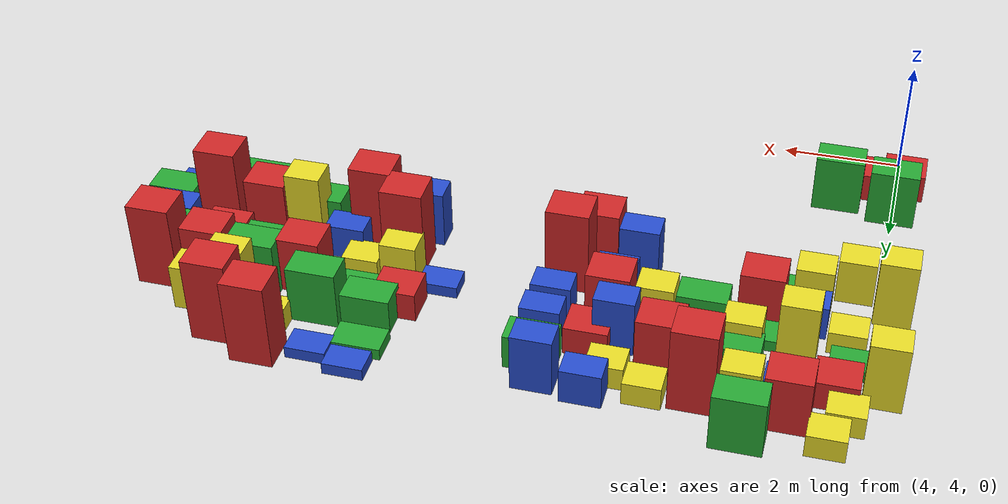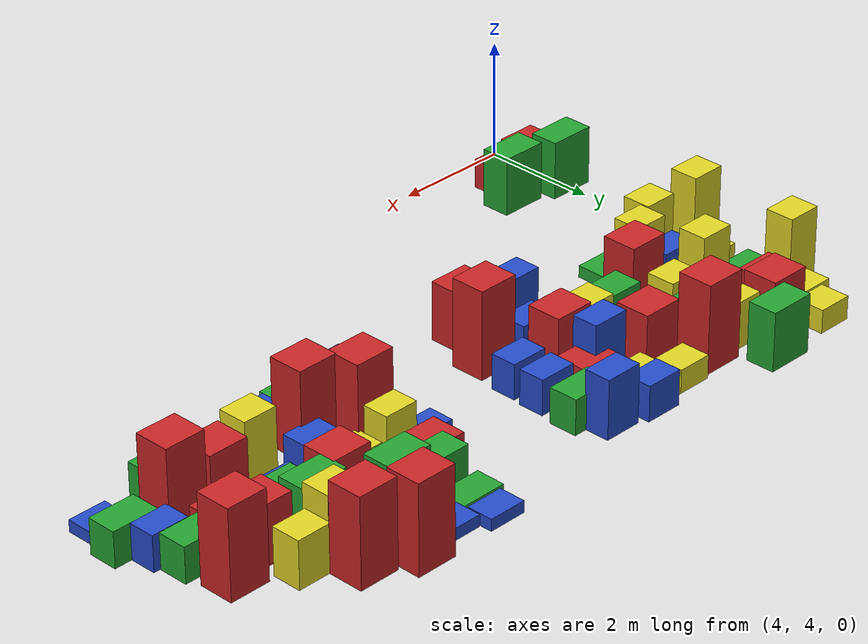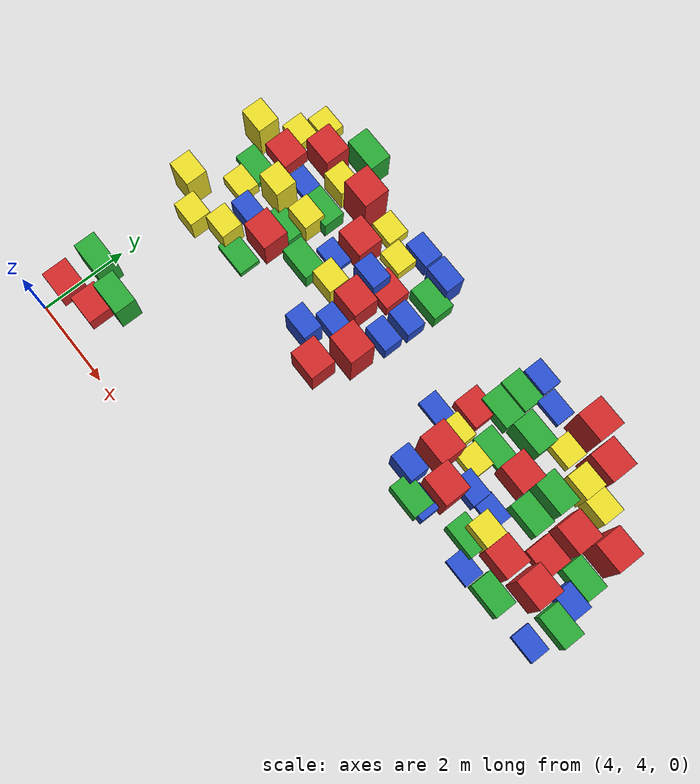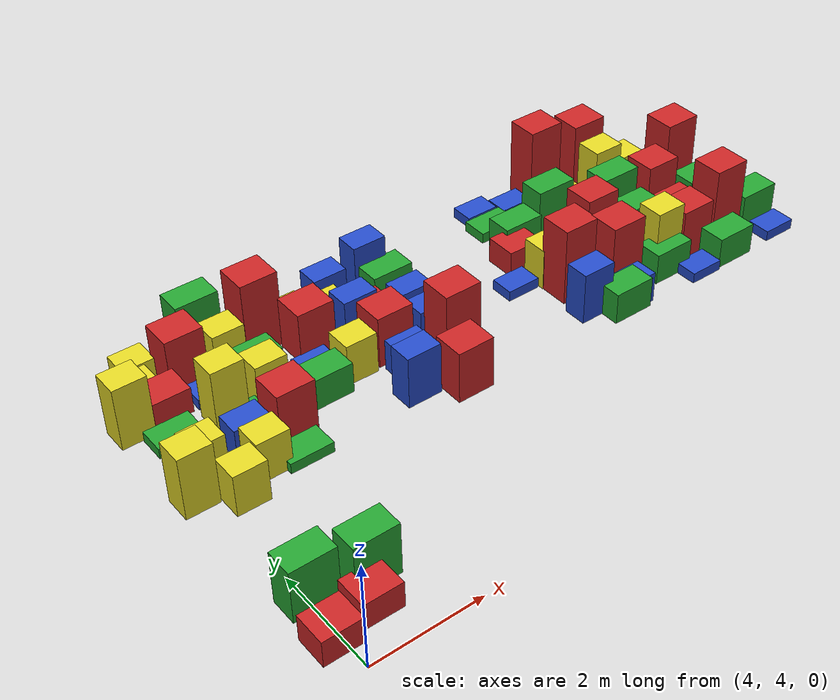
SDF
<sdf version="1.6">
 <world name="default">
  <model name="baggage_A_0.5_clone_5">
   <pose>14.5721 8.97359 0.25049 0 -0 0</pose>
   <static>1</static>
   <link name="baggage_A_0.5::link">
    <collision name="collision"><geometry><box><size>0.7 0.6 0.5</size></box></geometry></collision>
    <visual name="visual">
     <geometry><box><size>0.7 0.6 0.5</size></box></geometry>
     <material>
      <script><uri>file://media/materials/scripts/gazebo.material</uri><name>Gazebo/Red</name></script>
     </material>
    </visual>
   </link>
  </model>
  <model name="baggage_A_0.5_clone_8">
   <pose>8.23951 9.91271 0.250259 0 -0 0</pose>
   <static>1</static>
   <link name="baggage_A_0.5::link">
    <collision name="collision"><geometry><box><size>0.7 0.6 0.5</size></box></geometry></collision>
    <visual name="visual">
     <geometry><box><size>0.7 0.6 0.5</size></box></geometry>
     <material>
      <script><uri>file://media/materials/scripts/gazebo.material</uri><name>Gazebo/Red</name></script>
     </material>
    </visual>
   </link>
  </model>
  <model name="baggage_A_0.5_clone_14">
   <pose>4.67139 4.83978 0.249865 0 -0 0</pose>
   <static>1</static>
   <link name="baggage_A_0.5::link">
    <collision name="collision"><geometry><box><size>0.7 0.6 0.5</size></box></geometry></collision>
    <visual name="visual">
     <geometry><box><size>0.7 0.6 0.5</size></box></geometry>
     <material>
      <script><uri>file://media/materials/scripts/gazebo.material</uri><name>Gazebo/Red</name></script>
     </material>
    </visual>
   </link>
  </model>
  <model name="baggage_A_0.5_clone_34">
   <pose>4.42669 10.155 0.250487 0 -0 0</pose>
   <static>1</static>
   <link name="baggage_A_0.5::link">
    <collision name="collision"><geometry><box><size>0.7 0.6 0.5</size></box></geometry></collision>
    <visual name="visual">
     <geometry><box><size>0.7 0.6 0.5</size></box></geometry>
     <material>
      <script><uri>file://media/materials/scripts/gazebo.material</uri><name>Gazebo/Red</name></script>
     </material>
    </visual>
   </link>
  </model>
  <model name="baggage_A_0.5_clone_38">
   <pose>3.8838 4.6666 0.249811 0 -0 0</pose>
   <static>1</static>
   <link name="baggage_A_0.5::link">
    <collision name="collision"><geometry><box><size>0.7 0.6 0.5</size></box></geometry></collision>
    <visual name="visual">
     <geometry><box><size>0.7 0.6 0.5</size></box></geometry>
     <material>
      <script><uri>file://media/materials/scripts/gazebo.material</uri><name>Gazebo/Red</name></script>
     </material>
    </visual>
   </link>
  </model>
  <model name="baggage_A_0.5_clone_49">
   <pose>11.3391 9.77002 0.249869 0 -0 0</pose>
   <static>1</static>
   <link name="baggage_A_0.5::link">
    <collision name="collision"><geometry><box><size>0.7 0.6 0.5</size></box></geometry></collision>
    <visual name="visual">
     <geometry><box><size>0.7 0.6 0.5</size></box></geometry>
     <material>
      <script><uri>file://media/materials/scripts/gazebo.material</uri><name>Gazebo/Red</name></script>
     </material>
    </visual>
   </link>
  </model>
  <model name="baggage_A_1.0_clone_2">
   <pose>5.07663 10.79 0.500243 0 -0 0</pose>
   <static>1</static>
   <link name="baggage_A_1.0::link">
    <collision name="collision"><geometry><box><size>0.7 0.6 1</size></box></geometry></collision>
    <visual name="visual">
     <geometry><box><size>0.7 0.6 1</size></box></geometry>
     <material>
      <script><uri>file://media/materials/scripts/gazebo.material</uri><name>Gazebo/Red</name></script>
     </material>
    </visual>
   </link>
  </model>
  <model name="baggage_A_1.0_clone_14">
   <pose>14.0575 8.2505 0.500439 0 -0 0</pose>
   <static>1</static>
   <link name="baggage_A_1.0::link">
    <collision name="collision"><geometry><box><size>0.7 0.6 1</size></box></geometry></collision>
    <visual name="visual">
     <geometry><box><size>0.7 0.6 1</size></box></geometry>
     <material>
      <script><uri>file://media/materials/scripts/gazebo.material</uri><name>Gazebo/Red</name></script>
     </material>
    </visual>
   </link>
  </model>
  <model name="baggage_A_1.0_clone_15">
   <pose>8.55788 7.69446 0.500157 0 -0 0</pose>
   <static>1</static>
   <link name="baggage_A_1.0::link">
    <collision name="collision"><geometry><box><size>0.7 0.6 1</size></box></geometry></collision>
    <visual name="visual">
     <geometry><box><size>0.7 0.6 1</size></box></geometry>
     <material>
      <script><uri>file://media/materials/scripts/gazebo.material</uri><name>Gazebo/Red</name></script>
     </material>
    </visual>
   </link>
  </model>
  <model name="baggage_A_1.0_clone_19">
   <pose>14.5654 9.67124 0.500149 0 -0 0</pose>
   <static>1</static>
   <link name="baggage_A_1.0::link">
    <collision name="collision"><geometry><box><size>0.7 0.6 1</size></box></geometry></collision>
    <visual name="visual">
     <geometry><box><size>0.7 0.6 1</size></box></geometry>
     <material>
      <script><uri>file://media/materials/scripts/gazebo.material</uri><name>Gazebo/Red</name></script>
     </material>
    </visual>
   </link>
  </model>
  <model name="baggage_A_1.0_clone_27">
   <pose>7.10683 10.0643 0.499769 0 -0 0</pose>
   <static>1</static>
   <link name="baggage_A_1.0::link">
    <collision name="collision"><geometry><box><size>0.7 0.6 1</size></box></geometry></collision>
    <visual name="visual">
     <geometry><box><size>0.7 0.6 1</size></box></geometry>
     <material>
      <script><uri>file://media/materials/scripts/gazebo.material</uri><name>Gazebo/Red</name></script>
     </material>
    </visual>
   </link>
  </model>
  <model name="baggage_A_1.0_clone_28">
   <pose>5.77036 8.60826 0.499919 0 -0 0</pose>
   <static>1</static>
   <link name="baggage_A_1.0::link">
    <collision name="collision"><geometry><box><size>0.7 0.6 1</size></box></geometry></collision>
    <visual name="visual">
     <geometry><box><size>0.7 0.6 1</size></box></geometry>
     <material>
      <script><uri>file://media/materials/scripts/gazebo.material</uri><name>Gazebo/Red</name></script>
     </material>
    </visual>
   </link>
  </model>
  <model name="baggage_A_1.0_clone_40">
   <pose>12.9679 9.56183 0.500186 0 -0 0</pose>
   <static>1</static>
   <link name="baggage_A_1.0::link">
    <collision name="collision"><geometry><box><size>0.7 0.6 1</size></box></geometry></collision>
    <visual name="visual">
     <geometry><box><size>0.7 0.6 1</size></box></geometry>
     <material>
      <script><uri>file://media/materials/scripts/gazebo.material</uri><name>Gazebo/Red</name></script>
     </material>
    </visual>
   </link>
  </model>
  <model name="baggage_A_1.0_clone_44">
   <pose>8.06696 9.19307 0.499841 0 -0 0</pose>
   <static>1</static>
   <link name="baggage_A_1.0::link">
    <collision name="collision"><geometry><box><size>0.7 0.6 1</size></box></geometry></collision>
    <visual name="visual">
     <geometry><box><size>0.7 0.6 1</size></box></geometry>
     <material>
      <script><uri>file://media/materials/scripts/gazebo.material</uri><name>Gazebo/Red</name></script>
     </material>
    </visual>
   </link>
  </model>
  <model name="baggage_A_1.5_clone_0">
   <pose>13.1144 11.3235 0.749643 0 -0 0</pose>
   <static>1</static>
   <link name="baggage_A_1.5::link">
    <collision name="collision"><geometry><box><size>0.7 0.6 1.5</size></box></geometry></collision>
    <visual name="visual">
     <geometry><box><size>0.7 0.6 1.5</size></box></geometry>
     <material>
      <script><uri>file://media/materials/scripts/gazebo.material</uri><name>Gazebo/Red</name></script>
     </material>
    </visual>
   </link>
  </model>
  <model name="baggage_A_1.5_clone_8">
   <pose>14.8608 8.28483 0.750081 0 -0 0</pose>
   <static>1</static>
   <link name="baggage_A_1.5::link">
    <collision name="collision"><geometry><box><size>0.7 0.6 1.5</size></box></geometry></collision>
    <visual name="visual">
     <geometry><box><size>0.7 0.6 1.5</size></box></geometry>
     <material>
      <script><uri>file://media/materials/scripts/gazebo.material</uri><name>Gazebo/Red</name></script>
     </material>
    </visual>
   </link>
  </model>
  <model name="baggage_A_1.5_clone_16">
   <pose>15.2636 9.94094 0.749638 0 -0 0</pose>
   <static>1</static>
   <link name="baggage_A_1.5::link">
    <collision name="collision"><geometry><box><size>0.7 0.6 1.5</size></box></geometry></collision>
    <visual name="visual">
     <geometry><box><size>0.7 0.6 1.5</size></box></geometry>
     <material>
      <script><uri>file://media/materials/scripts/gazebo.material</uri><name>Gazebo/Red</name></script>
     </material>
    </visual>
   </link>
  </model>
  <model name="baggage_A_1.5_clone_23">
   <pose>6.47452 10.709 0.74976 0 -0 0</pose>
   <static>1</static>
   <link name="baggage_A_1.5::link">
    <collision name="collision"><geometry><box><size>0.7 0.6 1.5</size></box></geometry></collision>
    <visual name="visual">
     <geometry><box><size>0.7 0.6 1.5</size></box></geometry>
     <material>
      <script><uri>file://media/materials/scripts/gazebo.material</uri><name>Gazebo/Red</name></script>
     </material>
    </visual>
   </link>
  </model>
  <model name="baggage_A_1.5_clone_27">
   <pose>13.8756 10.9908 0.749655 0 -0 0</pose>
   <static>1</static>
   <link name="baggage_A_1.5::link">
    <collision name="collision"><geometry><box><size>0.7 0.6 1.5</size></box></geometry></collision>
    <visual name="visual">
     <geometry><box><size>0.7 0.6 1.5</size></box></geometry>
     <material>
      <script><uri>file://media/materials/scripts/gazebo.material</uri><name>Gazebo/Red</name></script>
     </material>
    </visual>
   </link>
  </model>
  <model name="baggage_A_1.5_clone_28">
   <pose>11.5627 8.59469 0.749913 0 -0 0</pose>
   <static>1</static>
   <link name="baggage_A_1.5::link">
    <collision name="collision"><geometry><box><size>0.7 0.6 1.5</size></box></geometry></collision>
    <visual name="visual">
     <geometry><box><size>0.7 0.6 1.5</size></box></geometry>
     <material>
      <script><uri>file://media/materials/scripts/gazebo.material</uri><name>Gazebo/Red</name></script>
     </material>
    </visual>
   </link>
  </model>
  <model name="baggage_A_1.5_clone_29">
   <pose>12.2384 8.14285 0.750142 0 -0 0</pose>
   <static>1</static>
   <link name="baggage_A_1.5::link">
    <collision name="collision"><geometry><box><size>0.7 0.6 1.5</size></box></geometry></collision>
    <visual name="visual">
     <geometry><box><size>0.7 0.6 1.5</size></box></geometry>
     <material>
      <script><uri>file://media/materials/scripts/gazebo.material</uri><name>Gazebo/Red</name></script>
     </material>
    </visual>
   </link>
  </model>
  <model name="baggage_A_1.5_clone_36">
   <pose>8.88645 8.43977 0.749677 0 -0 0</pose>
   <static>1</static>
   <link name="baggage_A_1.5::link">
    <collision name="collision"><geometry><box><size>0.7 0.6 1.5</size></box></geometry></collision>
    <visual name="visual">
     <geometry><box><size>0.7 0.6 1.5</size></box></geometry>
     <material>
      <script><uri>file://media/materials/scripts/gazebo.material</uri><name>Gazebo/Red</name></script>
     </material>
    </visual>
   </link>
  </model>
  <model name="baggage_B_0.2_clone_2">
   <pose>5.18338 10.0566 0.099706 0 -0 0</pose>
   <static>1</static>
   <link name="baggage_B_0.2::link">
    <collision name="collision"><geometry><box><size>0.65 0.45 0.2</size></box></geometry></collision>
    <visual name="visual">
     <geometry><box><size>0.65 0.45 0.2</size></box></geometry>
     <material>
      <script><uri>file://media/materials/scripts/gazebo.material</uri><name>Gazebo/Blue</name></script>
     </material>
    </visual>
   </link>
  </model>
  <model name="baggage_B_0.2_clone_9">
   <pose>6.88017 9.54866 0.099864 0 -0 0</pose>
   <static>1</static>
   <link name="baggage_B_0.2::link">
    <collision name="collision"><geometry><box><size>0.65 0.45 0.2</size></box></geometry></collision>
    <visual name="visual">
     <geometry><box><size>0.65 0.45 0.2</size></box></geometry>
     <material>
      <script><uri>file://media/materials/scripts/gazebo.material</uri><name>Gazebo/Blue</name></script>
     </material>
    </visual>
   </link>
  </model>
  <model name="baggage_B_0.2_clone_11">
   <pose>12.3409 11.1335 0.100217 0 -0 0</pose>
   <static>1</static>
   <link name="baggage_B_0.2::link">
    <collision name="collision"><geometry><box><size>0.65 0.45 0.2</size></box></geometry></collision>
    <visual name="visual">
     <geometry><box><size>0.65 0.45 0.2</size></box></geometry>
     <material>
      <script><uri>file://media/materials/scripts/gazebo.material</uri><name>Gazebo/Blue</name></script>
     </material>
    </visual>
   </link>
  </model>
  <model name="baggage_B_0.2_clone_14">
   <pose>10.8468 9.15923 0.099527 0 -0 0</pose>
   <static>1</static>
   <link name="baggage_B_0.2::link">
    <collision name="collision"><geometry><box><size>0.65 0.45 0.2</size></box></geometry></collision>
    <visual name="visual">
     <geometry><box><size>0.65 0.45 0.2</size></box></geometry>
     <material>
      <script><uri>file://media/materials/scripts/gazebo.material</uri><name>Gazebo/Blue</name></script>
     </material>
    </visual>
   </link>
  </model>
  <model name="baggage_B_0.2_clone_26">
   <pose>15.6719 7.62413 0.100295 0 -0 0</pose>
   <static>1</static>
   <link name="baggage_B_0.2::link">
    <collision name="collision"><geometry><box><size>0.65 0.45 0.2</size></box></geometry></collision>
    <visual name="visual">
     <geometry><box><size>0.65 0.45 0.2</size></box></geometry>
     <material>
      <script><uri>file://media/materials/scripts/gazebo.material</uri><name>Gazebo/Blue</name></script>
     </material>
    </visual>
   </link>
  </model>
  <model name="baggage_B_0.2_clone_35">
   <pose>13.7177 7.54429 0.100181 0 -0 0</pose>
   <static>1</static>
   <link name="baggage_B_0.2::link">
    <collision name="collision"><geometry><box><size>0.65 0.45 0.2</size></box></geometry></collision>
    <visual name="visual">
     <geometry><box><size>0.65 0.45 0.2</size></box></geometry>
     <material>
      <script><uri>file://media/materials/scripts/gazebo.material</uri><name>Gazebo/Blue</name></script>
     </material>
    </visual>
   </link>
  </model>
  <model name="baggage_B_0.2_clone_44">
   <pose>11.6676 11.3337 0.100134 0 -0 0</pose>
   <static>1</static>
   <link name="baggage_B_0.2::link">
    <collision name="collision"><geometry><box><size>0.65 0.45 0.2</size></box></geometry></collision>
    <visual name="visual">
     <geometry><box><size>0.65 0.45 0.2</size></box></geometry>
     <material>
      <script><uri>file://media/materials/scripts/gazebo.material</uri><name>Gazebo/Blue</name></script>
     </material>
    </visual>
   </link>
  </model>
  <model name="baggage_B_0.2_clone_46">
   <pose>13.1865 8.71899 0.099559 0 -0 0</pose>
   <static>1</static>
   <link name="baggage_B_0.2::link">
    <collision name="collision"><geometry><box><size>0.65 0.45 0.2</size></box></geometry></collision>
    <visual name="visual">
     <geometry><box><size>0.65 0.45 0.2</size></box></geometry>
     <material>
      <script><uri>file://media/materials/scripts/gazebo.material</uri><name>Gazebo/Blue</name></script>
     </material>
    </visual>
   </link>
  </model>
  <model name="baggage_B_0.6_clone_11">
   <pose>12.5764 8.62506 0.300378 0 -0 0</pose>
   <static>1</static>
   <link name="baggage_B_0.6::link">
    <collision name="collision"><geometry><box><size>0.65 0.45 0.6</size></box></geometry></collision>
    <visual name="visual">
     <geometry><box><size>0.65 0.45 0.6</size></box></geometry>
     <material>
      <script><uri>file://media/materials/scripts/gazebo.material</uri><name>Gazebo/Blue</name></script>
     </material>
    </visual>
   </link>
  </model>
  <model name="baggage_B_0.6_clone_14">
   <pose>8.10158 8.58616 0.29962 0 -0 0</pose>
   <static>1</static>
   <link name="baggage_B_0.6::link">
    <collision name="collision"><geometry><box><size>0.65 0.45 0.6</size></box></geometry></collision>
    <visual name="visual">
     <geometry><box><size>0.65 0.45 0.6</size></box></geometry>
     <material>
      <script><uri>file://media/materials/scripts/gazebo.material</uri><name>Gazebo/Blue</name></script>
     </material>
    </visual>
   </link>
  </model>
  <model name="baggage_B_0.6_clone_19">
   <pose>8.07114 11.0295 0.300407 0 -0 0</pose>
   <static>1</static>
   <link name="baggage_B_0.6::link">
    <collision name="collision"><geometry><box><size>0.65 0.45 0.6</size></box></geometry></collision>
    <visual name="visual">
     <geometry><box><size>0.65 0.45 0.6</size></box></geometry>
     <material>
      <script><uri>file://media/materials/scripts/gazebo.material</uri><name>Gazebo/Blue</name></script>
     </material>
    </visual>
   </link>
  </model>
  <model name="baggage_B_0.6_clone_20">
   <pose>5.04667 8.68218 0.299619 0 -0 0</pose>
   <static>1</static>
   <link name="baggage_B_0.6::link">
    <collision name="collision"><geometry><box><size>0.65 0.45 0.6</size></box></geometry></collision>
    <visual name="visual">
     <geometry><box><size>0.65 0.45 0.6</size></box></geometry>
     <material>
      <script><uri>file://media/materials/scripts/gazebo.material</uri><name>Gazebo/Blue</name></script>
     </material>
    </visual>
   </link>
  </model>
  <model name="baggage_B_0.6_clone_29">
   <pose>15.5288 8.74782 0.299695 0 -0 0</pose>
   <static>1</static>
   <link name="baggage_B_0.6::link">
    <collision name="collision"><geometry><box><size>0.65 0.45 0.6</size></box></geometry></collision>
    <visual name="visual">
     <geometry><box><size>0.65 0.45 0.6</size></box></geometry>
     <material>
      <script><uri>file://media/materials/scripts/gazebo.material</uri><name>Gazebo/Blue</name></script>
     </material>
    </visual>
   </link>
  </model>
  <model name="baggage_B_0.6_clone_40">
   <pose>9.00772 9.80732 0.299643 0 -0 0</pose>
   <static>1</static>
   <link name="baggage_B_0.6::link">
    <collision name="collision"><geometry><box><size>0.65 0.45 0.6</size></box></geometry></collision>
    <visual name="visual">
     <geometry><box><size>0.65 0.45 0.6</size></box></geometry>
     <material>
      <script><uri>file://media/materials/scripts/gazebo.material</uri><name>Gazebo/Blue</name></script>
     </material>
    </visual>
   </link>
  </model>
  <model name="baggage_B_0.6_clone_44">
   <pose>12.163 7.62812 0.299703 0 -0 0</pose>
   <static>1</static>
   <link name="baggage_B_0.6::link">
    <collision name="collision"><geometry><box><size>0.65 0.45 0.6</size></box></geometry></collision>
    <visual name="visual">
     <geometry><box><size>0.65 0.45 0.6</size></box></geometry>
     <material>
      <script><uri>file://media/materials/scripts/gazebo.material</uri><name>Gazebo/Blue</name></script>
     </material>
    </visual>
   </link>
  </model>
  <model name="baggage_B_0.6_clone_46">
   <pose>8.97728 9.22323 0.30034 0 -0 0</pose>
   <static>1</static>
   <link name="baggage_B_0.6::link">
    <collision name="collision"><geometry><box><size>0.65 0.45 0.6</size></box></geometry></collision>
    <visual name="visual">
     <geometry><box><size>0.65 0.45 0.6</size></box></geometry>
     <material>
      <script><uri>file://media/materials/scripts/gazebo.material</uri><name>Gazebo/Blue</name></script>
     </material>
    </visual>
   </link>
  </model>
  <model name="baggage_B_1.0_clone_3">
   <pose>8.84494 10.9308 0.4999 0 -0 0</pose>
   <static>1</static>
   <link name="baggage_B_1.0::link">
    <collision name="collision"><geometry><box><size>0.65 0.45 1</size></box></geometry></collision>
    <visual name="visual">
     <geometry><box><size>0.65 0.45 1</size></box></geometry>
     <material>
      <script><uri>file://media/materials/scripts/gazebo.material</uri><name>Gazebo/Blue</name></script>
     </material>
    </visual>
   </link>
  </model>
  <model name="baggage_B_1.0_clone_7">
   <pose>7.82622 8.01382 0.500055 0 -0 0</pose>
   <static>1</static>
   <link name="baggage_B_1.0::link">
    <collision name="collision"><geometry><box><size>0.65 0.45 1</size></box></geometry></collision>
    <visual name="visual">
     <geometry><box><size>0.65 0.45 1</size></box></geometry>
     <material>
      <script><uri>file://media/materials/scripts/gazebo.material</uri><name>Gazebo/Blue</name></script>
     </material>
    </visual>
   </link>
  </model>
  <model name="baggage_B_1.0_clone_23">
   <pose>11.4352 7.90468 0.500349 0 -0 0</pose>
   <static>1</static>
   <link name="baggage_B_1.0::link">
    <collision name="collision"><geometry><box><size>0.65 0.45 1</size></box></geometry></collision>
    <visual name="visual">
     <geometry><box><size>0.65 0.45 1</size></box></geometry>
     <material>
      <script><uri>file://media/materials/scripts/gazebo.material</uri><name>Gazebo/Blue</name></script>
     </material>
    </visual>
   </link>
  </model>
  <model name="baggage_B_1.0_clone_28">
   <pose>7.8547 9.7882 0.499781 0 -0 0</pose>
   <static>1</static>
   <link name="baggage_B_1.0::link">
    <collision name="collision"><geometry><box><size>0.65 0.45 1</size></box></geometry></collision>
    <visual name="visual">
     <geometry><box><size>0.65 0.45 1</size></box></geometry>
     <material>
      <script><uri>file://media/materials/scripts/gazebo.material</uri><name>Gazebo/Blue</name></script>
     </material>
    </visual>
   </link>
  </model>
  <model name="baggage_C_0.4_clone_3">
   <pose>4.38771 8.94769 0.200449 0 -0 0</pose>
   <static>1</static>
   <link name="baggage_C_0.4::link">
    <collision name="collision"><geometry><box><size>0.6 0.5 0.4</size></box></geometry></collision>
    <visual name="visual">
     <geometry><box><size>0.6 0.5 0.4</size></box></geometry>
     <material>
      <script><uri>file://media/materials/scripts/gazebo.material</uri><name>Gazebo/Yellow</name></script>
     </material>
    </visual>
   </link>
  </model>
  <model name="baggage_C_0.4_clone_7">
   <pose>4.22993 10.6812 0.200395 0 -0 0</pose>
   <static>1</static>
   <link name="baggage_C_0.4::link">
    <collision name="collision"><geometry><box><size>0.6 0.5 0.4</size></box></geometry></collision>
    <visual name="visual">
     <geometry><box><size>0.6 0.5 0.4</size></box></geometry>
     <material>
      <script><uri>file://media/materials/scripts/gazebo.material</uri><name>Gazebo/Yellow</name></script>
     </material>
    </visual>
   </link>
  </model>
  <model name="baggage_C_0.4_clone_11">
   <pose>7.1931 10.8223 0.199589 0 -0 0</pose>
   <static>1</static>
   <link name="baggage_C_0.4::link">
    <collision name="collision"><geometry><box><size>0.6 0.5 0.4</size></box></geometry></collision>
    <visual name="visual">
     <geometry><box><size>0.6 0.5 0.4</size></box></geometry>
     <material>
      <script><uri>file://media/materials/scripts/gazebo.material</uri><name>Gazebo/Yellow</name></script>
     </material>
    </visual>
   </link>
  </model>
  <model name="baggage_C_0.4_clone_16">
   <pose>13.1817 10.6982 0.199534 0 -0 0</pose>
   <static>1</static>
   <link name="baggage_C_0.4::link">
    <collision name="collision"><geometry><box><size>0.6 0.5 0.4</size></box></geometry></collision>
    <visual name="visual">
     <geometry><box><size>0.6 0.5 0.4</size></box></geometry>
     <material>
      <script><uri>file://media/materials/scripts/gazebo.material</uri><name>Gazebo/Yellow</name></script>
     </material>
    </visual>
   </link>
  </model>
  <model name="baggage_C_0.4_clone_23">
   <pose>12.1658 9.06728 0.200294 0 -0 0</pose>
   <static>1</static>
   <link name="baggage_C_0.4::link">
    <collision name="collision"><geometry><box><size>0.6 0.5 0.4</size></box></geometry></collision>
    <visual name="visual">
     <geometry><box><size>0.6 0.5 0.4</size></box></geometry>
     <material>
      <script><uri>file://media/materials/scripts/gazebo.material</uri><name>Gazebo/Yellow</name></script>
     </material>
    </visual>
   </link>
  </model>
  <model name="baggage_C_0.4_clone_27">
   <pose>4.44483 11.2187 0.200216 0 -0 0</pose>
   <static>1</static>
   <link name="baggage_C_0.4::link">
    <collision name="collision"><geometry><box><size>0.6 0.5 0.4</size></box></geometry></collision>
    <visual name="visual">
     <geometry><box><size>0.6 0.5 0.4</size></box></geometry>
     <material>
      <script><uri>file://media/materials/scripts/gazebo.material</uri><name>Gazebo/Yellow</name></script>
     </material>
    </visual>
   </link>
  </model>
  <model name="baggage_C_0.4_clone_32">
   <pose>7.82062 10.5494 0.200393 0 -0 0</pose>
   <static>1</static>
   <link name="baggage_C_0.4::link">
    <collision name="collision"><geometry><box><size>0.6 0.5 0.4</size></box></geometry></collision>
    <visual name="visual">
     <geometry><box><size>0.6 0.5 0.4</size></box></geometry>
     <material>
      <script><uri>file://media/materials/scripts/gazebo.material</uri><name>Gazebo/Yellow</name></script>
     </material>
    </visual>
   </link>
  </model>
  <model name="baggage_C_0.8_clone_4">
   <pose>14.4851 10.4356 0.400043 0 -0 0</pose>
   <static>1</static>
   <link name="baggage_C_0.8::link">
    <collision name="collision"><geometry><box><size>0.6 0.5 0.8</size></box></geometry></collision>
    <visual name="visual">
     <geometry><box><size>0.6 0.5 0.8</size></box></geometry>
     <material>
      <script><uri>file://media/materials/scripts/gazebo.material</uri><name>Gazebo/Yellow</name></script>
     </material>
    </visual>
   </link>
  </model>
  <model name="baggage_C_0.8_clone_8">
   <pose>5.02203 8.05738 0.400342 0 -0 0</pose>
   <static>1</static>
   <link name="baggage_C_0.8::link">
    <collision name="collision"><geometry><box><size>0.6 0.5 0.8</size></box></geometry></collision>
    <visual name="visual">
     <geometry><box><size>0.6 0.5 0.8</size></box></geometry>
     <material>
      <script><uri>file://media/materials/scripts/gazebo.material</uri><name>Gazebo/Yellow</name></script>
     </material>
    </visual>
   </link>
  </model>
  <model name="baggage_C_0.8_clone_22">
   <pose>5.79786 10.6121 0.400058 0 -0 0</pose>
   <static>1</static>
   <link name="baggage_C_0.8::link">
    <collision name="collision"><geometry><box><size>0.6 0.5 0.8</size></box></geometry></collision>
    <visual name="visual">
     <geometry><box><size>0.6 0.5 0.8</size></box></geometry>
     <material>
      <script><uri>file://media/materials/scripts/gazebo.material</uri><name>Gazebo/Yellow</name></script>
     </material>
    </visual>
   </link>
  </model>
  <model name="baggage_C_0.8_clone_30">
   <pose>11.5021 9.09537 0.400131 0 -0 0</pose>
   <static>1</static>
   <link name="baggage_C_0.8::link">
    <collision name="collision"><geometry><box><size>0.6 0.5 0.8</size></box></geometry></collision>
    <visual name="visual">
     <geometry><box><size>0.6 0.5 0.8</size></box></geometry>
     <material>
      <script><uri>file://media/materials/scripts/gazebo.material</uri><name>Gazebo/Yellow</name></script>
     </material>
    </visual>
   </link>
  </model>
  <model name="baggage_C_0.8_clone_38">
   <pose>7.35564 9.08985 0.400355 0 -0 0</pose>
   <static>1</static>
   <link name="baggage_C_0.8::link">
    <collision name="collision"><geometry><box><size>0.6 0.5 0.8</size></box></geometry></collision>
    <visual name="visual">
     <geometry><box><size>0.6 0.5 0.8</size></box></geometry>
     <material>
      <script><uri>file://media/materials/scripts/gazebo.material</uri><name>Gazebo/Yellow</name></script>
     </material>
    </visual>
   </link>
  </model>
  <model name="baggage_C_0.8_clone_40">
   <pose>5.93377 9.54354 0.399757 0 -0 0</pose>
   <static>1</static>
   <link name="baggage_C_0.8::link">
    <collision name="collision"><geometry><box><size>0.6 0.5 0.8</size></box></geometry></collision>
    <visual name="visual">
     <geometry><box><size>0.6 0.5 0.8</size></box></geometry>
     <material>
      <script><uri>file://media/materials/scripts/gazebo.material</uri><name>Gazebo/Yellow</name></script>
     </material>
    </visual>
   </link>
  </model>
  <model name="baggage_C_0.8_clone_41">
   <pose>4.39698 7.69332 0.399892 0 -0 0</pose>
   <static>1</static>
   <link name="baggage_C_0.8::link">
    <collision name="collision"><geometry><box><size>0.6 0.5 0.8</size></box></geometry></collision>
    <visual name="visual">
     <geometry><box><size>0.6 0.5 0.8</size></box></geometry>
     <material>
      <script><uri>file://media/materials/scripts/gazebo.material</uri><name>Gazebo/Yellow</name></script>
     </material>
    </visual>
   </link>
  </model>
  <model name="baggage_C_1.2_clone_2">
   <pose>5.11085 9.43702 0.600052 0 -0 0</pose>
   <static>1</static>
   <link name="baggage_C_1.2::link">
    <collision name="collision"><geometry><box><size>0.6 0.5 1.2</size></box></geometry></collision>
    <visual name="visual">
     <geometry><box><size>0.6 0.5 1.2</size></box></geometry>
     <material>
      <script><uri>file://media/materials/scripts/gazebo.material</uri><name>Gazebo/Yellow</name></script>
     </material>
    </visual>
   </link>
  </model>
  <model name="baggage_C_1.2_clone_5">
   <pose>13.879 10.385 0.599944 0 -0 0</pose>
   <static>1</static>
   <link name="baggage_C_1.2::link">
    <collision name="collision"><geometry><box><size>0.6 0.5 1.2</size></box></geometry></collision>
    <visual name="visual">
     <geometry><box><size>0.6 0.5 1.2</size></box></geometry>
     <material>
      <script><uri>file://media/materials/scripts/gazebo.material</uri><name>Gazebo/Yellow</name></script>
     </material>
    </visual>
   </link>
  </model>
  <model name="baggage_C_1.2_clone_21">
   <pose>3.74973 10.0116 0.599916 0 -0 0</pose>
   <static>1</static>
   <link name="baggage_C_1.2::link">
    <collision name="collision"><geometry><box><size>0.6 0.5 1.2</size></box></geometry></collision>
    <visual name="visual">
     <geometry><box><size>0.6 0.5 1.2</size></box></geometry>
     <material>
      <script><uri>file://media/materials/scripts/gazebo.material</uri><name>Gazebo/Yellow</name></script>
     </material>
    </visual>
   </link>
  </model>
  <model name="baggage_C_1.2_clone_36">
   <pose>13.4023 8.24375 0.599723 0 -0 0</pose>
   <static>1</static>
   <link name="baggage_C_1.2::link">
    <collision name="collision"><geometry><box><size>0.6 0.5 1.2</size></box></geometry></collision>
    <visual name="visual">
     <geometry><box><size>0.6 0.5 1.2</size></box></geometry>
     <material>
      <script><uri>file://media/materials/scripts/gazebo.material</uri><name>Gazebo/Yellow</name></script>
     </material>
    </visual>
   </link>
  </model>
  <model name="baggage_C_1.2_clone_38">
   <pose>3.76945 8.10559 0.599611 0 -0 0</pose>
   <static>1</static>
   <link name="baggage_C_1.2::link">
    <collision name="collision"><geometry><box><size>0.6 0.5 1.2</size></box></geometry></collision>
    <visual name="visual">
     <geometry><box><size>0.6 0.5 1.2</size></box></geometry>
     <material>
      <script><uri>file://media/materials/scripts/gazebo.material</uri><name>Gazebo/Yellow</name></script>
     </material>
    </visual>
   </link>
  </model>
  <model name="baggage_D_0.2_clone_0">
   <pose>5.66705 9.14027 0.100375 0 -0 0</pose>
   <static>1</static>
   <link name="baggage_D_0.2::link">
    <collision name="collision"><geometry><box><size>0.8 0.5 0.2</size></box></geometry></collision>
    <visual name="visual">
     <geometry><box><size>0.8 0.5 0.2</size></box></geometry>
     <material>
      <script><uri>file://media/materials/scripts/gazebo.material</uri><name>Gazebo/Green</name></script>
     </material>
    </visual>
   </link>
  </model>
  <model name="baggage_D_0.2_clone_5">
   <pose>11.6362 10.8191 0.099978 0 -0 0</pose>
   <static>1</static>
   <link name="baggage_D_0.2::link">
    <collision name="collision"><geometry><box><size>0.8 0.5 0.2</size></box></geometry></collision>
    <visual name="visual">
     <geometry><box><size>0.8 0.5 0.2</size></box></geometry>
     <material>
      <script><uri>file://media/materials/scripts/gazebo.material</uri><name>Gazebo/Green</name></script>
     </material>
    </visual>
   </link>
  </model>
  <model name="baggage_D_0.2_clone_6">
   <pose>5.60831 7.95334 0.099958 0 -0 0</pose>
   <static>1</static>
   <link name="baggage_D_0.2::link">
    <collision name="collision"><geometry><box><size>0.8 0.5 0.2</size></box></geometry></collision>
    <visual name="visual">
     <geometry><box><size>0.8 0.5 0.2</size></box></geometry>
     <material>
      <script><uri>file://media/materials/scripts/gazebo.material</uri><name>Gazebo/Green</name></script>
     </material>
    </visual>
   </link>
  </model>
  <model name="baggage_D_0.2_clone_19">
   <pose>4.20957 9.48197 0.100262 0 -0 0</pose>
   <static>1</static>
   <link name="baggage_D_0.2::link">
    <collision name="collision"><geometry><box><size>0.8 0.5 0.2</size></box></geometry></collision>
    <visual name="visual">
     <geometry><box><size>0.8 0.5 0.2</size></box></geometry>
     <material>
      <script><uri>file://media/materials/scripts/gazebo.material</uri><name>Gazebo/Green</name></script>
     </material>
    </visual>
   </link>
  </model>
  <model name="baggage_D_0.2_clone_48">
   <pose>12.2063 9.59457 0.10011 0 -0 0</pose>
   <static>1</static>
   <link name="baggage_D_0.2::link">
    <collision name="collision"><geometry><box><size>0.8 0.5 0.2</size></box></geometry></collision>
    <visual name="visual">
     <geometry><box><size>0.8 0.5 0.2</size></box></geometry>
     <material>
      <script><uri>file://media/materials/scripts/gazebo.material</uri><name>Gazebo/Green</name></script>
     </material>
    </visual>
   </link>
  </model>
  <model name="baggage_D_0.6_clone_0">
   <pose>8.99784 10.4889 0.299775 0 -0 0</pose>
   <static>1</static>
   <link name="baggage_D_0.6::link">
    <collision name="collision"><geometry><box><size>0.8 0.5 0.6</size></box></geometry></collision>
    <visual name="visual">
     <geometry><box><size>0.8 0.5 0.6</size></box></geometry>
     <material>
      <script><uri>file://media/materials/scripts/gazebo.material</uri><name>Gazebo/Green</name></script>
     </material>
    </visual>
   </link>
  </model>
  <model name="baggage_D_0.6_clone_7">
   <pose>5.98966 9.936 0.300101 0 -0 0</pose>
   <static>1</static>
   <link name="baggage_D_0.6::link">
    <collision name="collision"><geometry><box><size>0.8 0.5 0.6</size></box></geometry></collision>
    <visual name="visual">
     <geometry><box><size>0.8 0.5 0.6</size></box></geometry>
     <material>
      <script><uri>file://media/materials/scripts/gazebo.material</uri><name>Gazebo/Green</name></script>
     </material>
    </visual>
   </link>
  </model>
  <model name="baggage_D_0.6_clone_13">
   <pose>13.7269 9.24225 0.299662 0 -0 0</pose>
   <static>1</static>
   <link name="baggage_D_0.6::link">
    <collision name="collision"><geometry><box><size>0.8 0.5 0.6</size></box></geometry></collision>
    <visual name="visual">
     <geometry><box><size>0.8 0.5 0.6</size></box></geometry>
     <material>
      <script><uri>file://media/materials/scripts/gazebo.material</uri><name>Gazebo/Green</name></script>
     </material>
    </visual>
   </link>
  </model>
  <model name="baggage_D_0.6_clone_16">
   <pose>11.6849 10.1892 0.299607 0 -0 0</pose>
   <static>1</static>
   <link name="baggage_D_0.6::link">
    <collision name="collision"><geometry><box><size>0.8 0.5 0.6</size></box></geometry></collision>
    <visual name="visual">
     <geometry><box><size>0.8 0.5 0.6</size></box></geometry>
     <material>
      <script><uri>file://media/materials/scripts/gazebo.material</uri><name>Gazebo/Green</name></script>
     </material>
    </visual>
   </link>
  </model>
  <model name="baggage_D_0.6_clone_18">
   <pose>6.64758 8.91608 0.300092 0 -0 0</pose>
   <static>1</static>
   <link name="baggage_D_0.6::link">
    <collision name="collision"><geometry><box><size>0.8 0.5 0.6</size></box></geometry></collision>
    <visual name="visual">
     <geometry><box><size>0.8 0.5 0.6</size></box></geometry>
     <material>
      <script><uri>file://media/materials/scripts/gazebo.material</uri><name>Gazebo/Green</name></script>
     </material>
    </visual>
   </link>
  </model>
  <model name="baggage_D_0.6_clone_21">
   <pose>13.2627 7.96183 0.300099 0 -0 0</pose>
   <static>1</static>
   <link name="baggage_D_0.6::link">
    <collision name="collision"><geometry><box><size>0.8 0.5 0.6</size></box></geometry></collision>
    <visual name="visual">
     <geometry><box><size>0.8 0.5 0.6</size></box></geometry>
     <material>
      <script><uri>file://media/materials/scripts/gazebo.material</uri><name>Gazebo/Green</name></script>
     </material>
    </visual>
   </link>
  </model>
  <model name="baggage_D_0.6_clone_22">
   <pose>14.4676 7.61269 0.299868 0 -0 0</pose>
   <static>1</static>
   <link name="baggage_D_0.6::link">
    <collision name="collision"><geometry><box><size>0.8 0.5 0.6</size></box></geometry></collision>
    <visual name="visual">
     <geometry><box><size>0.8 0.5 0.6</size></box></geometry>
     <material>
      <script><uri>file://media/materials/scripts/gazebo.material</uri><name>Gazebo/Green</name></script>
     </material>
    </visual>
   </link>
  </model>
  <model name="baggage_D_0.6_clone_36">
   <pose>11.949 7.57628 0.300152 0 -0 0</pose>
   <static>1</static>
   <link name="baggage_D_0.6::link">
    <collision name="collision"><geometry><box><size>0.8 0.5 0.6</size></box></geometry></collision>
    <visual name="visual">
     <geometry><box><size>0.8 0.5 0.6</size></box></geometry>
     <material>
      <script><uri>file://media/materials/scripts/gazebo.material</uri><name>Gazebo/Green</name></script>
     </material>
    </visual>
   </link>
  </model>
  <model name="baggage_D_0.6_clone_42">
   <pose>15.3391 9.23297 0.299526 0 -0 0</pose>
   <static>1</static>
   <link name="baggage_D_0.6::link">
    <collision name="collision"><geometry><box><size>0.8 0.5 0.6</size></box></geometry></collision>
    <visual name="visual">
     <geometry><box><size>0.8 0.5 0.6</size></box></geometry>
     <material>
      <script><uri>file://media/materials/scripts/gazebo.material</uri><name>Gazebo/Green</name></script>
     </material>
    </visual>
   </link>
  </model>
  <model name="baggage_D_0.6_clone_43">
   <pose>15.7547 8.27735 0.299717 0 -0 0</pose>
   <static>1</static>
   <link name="baggage_D_0.6::link">
    <collision name="collision"><geometry><box><size>0.8 0.5 0.6</size></box></geometry></collision>
    <visual name="visual">
     <geometry><box><size>0.8 0.5 0.6</size></box></geometry>
     <material>
      <script><uri>file://media/materials/scripts/gazebo.material</uri><name>Gazebo/Green</name></script>
     </material>
    </visual>
   </link>
  </model>
  <model name="baggage_D_1.0_clone_18">
   <pose>12.5086 10.2636 0.500185 0 -0 0</pose>
   <static>1</static>
   <link name="baggage_D_1.0::link">
    <collision name="collision"><geometry><box><size>0.8 0.5 1</size></box></geometry></collision>
    <visual name="visual">
     <geometry><box><size>0.8 0.5 1</size></box></geometry>
     <material>
      <script><uri>file://media/materials/scripts/gazebo.material</uri><name>Gazebo/Green</name></script>
     </material>
    </visual>
   </link>
  </model>
  <model name="baggage_D_1.0_clone_29">
   <pose>4.03377 5.49289 0.500469 0 -0 0</pose>
   <static>1</static>
   <link name="baggage_D_1.0::link">
    <collision name="collision"><geometry><box><size>0.8 0.5 1</size></box></geometry></collision>
    <visual name="visual">
     <geometry><box><size>0.8 0.5 1</size></box></geometry>
     <material>
      <script><uri>file://media/materials/scripts/gazebo.material</uri><name>Gazebo/Green</name></script>
     </material>
    </visual>
   </link>
  </model>
  <model name="baggage_D_1.0_clone_34">
   <pose>13.6968 9.833 0.499695 0 -0 0</pose>
   <static>1</static>
   <link name="baggage_D_1.0::link">
    <collision name="collision"><geometry><box><size>0.8 0.5 1</size></box></geometry></collision>
    <visual name="visual">
     <geometry><box><size>0.8 0.5 1</size></box></geometry>
     <material>
      <script><uri>file://media/materials/scripts/gazebo.material</uri><name>Gazebo/Green</name></script>
     </material>
    </visual>
   </link>
  </model>
  <model name="baggage_D_1.0_clone_37">
   <pose>4.95714 5.3134 0.499957 0 -0 0</pose>
   <static>1</static>
   <link name="baggage_D_1.0::link">
    <collision name="collision"><geometry><box><size>0.8 0.5 1</size></box></geometry></collision>
    <visual name="visual">
     <geometry><box><size>0.8 0.5 1</size></box></geometry>
     <material>
      <script><uri>file://media/materials/scripts/gazebo.material</uri><name>Gazebo/Green</name></script>
     </material>
    </visual>
   </link>
  </model>
  <model name="baggage_D_1.0_clone_49">
   <pose>5.70432 11.4035 0.500292 0 -0 0</pose>
   <static>1</static>
   <link name="baggage_D_1.0::link">
    <collision name="collision"><geometry><box><size>0.8 0.5 1</size></box></geometry></collision>
    <visual name="visual">
     <geometry><box><size>0.8 0.5 1</size></box></geometry>
     <material>
      <script><uri>file://media/materials/scripts/gazebo.material</uri><name>Gazebo/Green</name></script>
     </material>
    </visual>
   </link>
  </model>
 </world>
</sdf>
